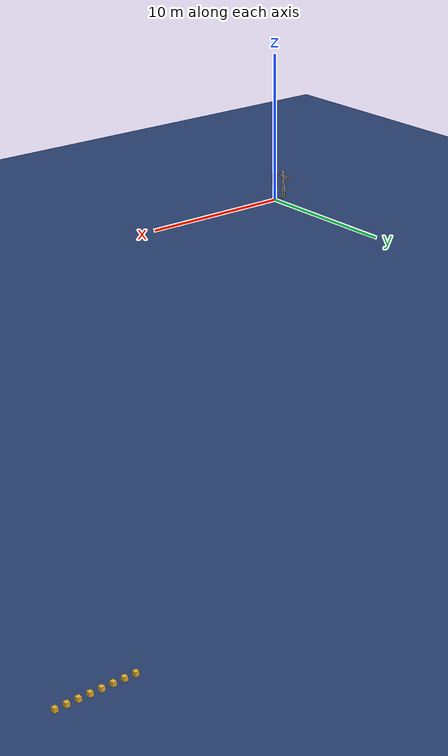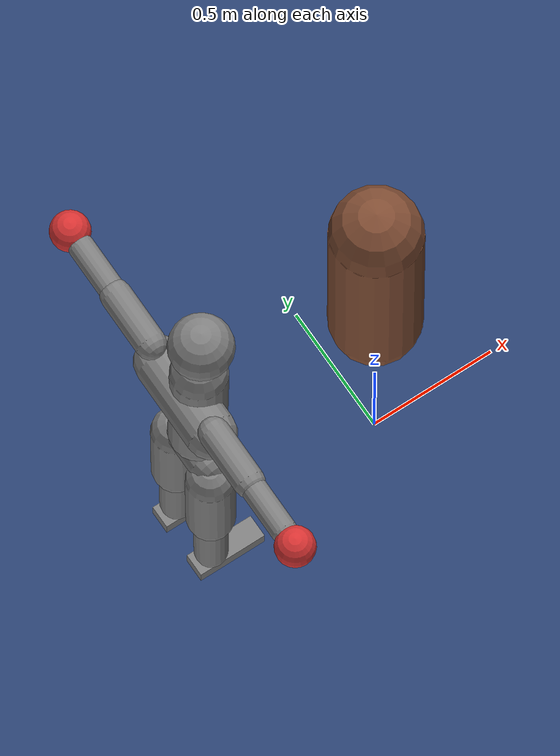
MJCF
<mujoco model="trump_bag">
  <compiler angle="degree" inertiafromgeom="true" autolimits="true"/>
  <option timestep="0.005" iterations="10" ls_iterations="10" integrator="implicitfast">
    <flag eulerdamp="disable"/>
  </option>
  <default>
    <geom contype="1" conaffinity="1" condim="3" friction="1.0 0.005 0.0001" density="1000" margin="0"/>
    <joint limited="true"/>
    <position ctrllimited="true"/>
  </default>
  <asset>
    <texture name="grid" type="2d" builtin="checker" rgb1=".18 .28 .48" rgb2=".14 .22 .40" width="300" height="300"/>
    <material name="grid" texture="grid" texrepeat="6 6" reflectance="0"/>
  </asset>
  <worldbody>
    <light pos="0 0 5" dir="0 0 -1" directional="true"/>
    <geom name="floor" type="plane" size="0 0 0.05" material="grid" friction="1.0 0.005 0.0001"/>

    <body name="a_pelvis" pos="-0.7500 0.0000 0.8500" quat="1.00000 0 0 0.00000">
      <freejoint name="a_root"/>
      <geom name="a_pelvis_geom" type="capsule" fromto="0.0000 -0.0700 0.0000 0.0000 0.0700 0.0000" size="0.0759" mass="9.1798" />
      <geom name="a_pelvis_up" type="capsule" fromto="0.0000 0.0000 0.0000 0.0000 0.0000 0.1100" size="0.0683" mass="6.1988" />
      <body name="a_torso" pos="0.0000 0.0000 0.1300">
        <joint name="a_abdomen_z" type="hinge" axis="0 0 1" range="-45 45" damping="0.5" armature="0.08" stiffness="0"/>
        <joint name="a_abdomen_y" type="hinge" axis="0 1 0" range="-60 30" damping="0.5" armature="0.08" stiffness="0"/>
        <joint name="a_abdomen_x" type="hinge" axis="1 0 0" range="-35 35" damping="0.5" armature="0.08" stiffness="0"/>
        <geom name="a_torso_geom" type="capsule" fromto="0.0000 0.0000 0.0200 0.0100 0.0000 0.5700" size="0.1054" mass="38.4465" />
        <geom name="a_chest_geom" type="capsule" fromto="-0.0480 -0.1600 0.4160 -0.0480 0.1600 0.4160" size="0.0949" mass="0.5"/>
        <geom name="a_head_geom" type="sphere" pos="0.0200 0.0000 0.8000" size="0.1200" mass="8.7723" />
        <body name="a_upper_arm_l" pos="-0.0600 0.2000 0.5200">
          <joint name="a_shoulder_x_l" type="hinge" axis="1 0 0" range="-170 30" damping="0.5" armature="0.03" stiffness="0"/>
          <joint name="a_shoulder_z_l" type="hinge" axis="0 0 1" range="-110 110" damping="0.5" armature="0.03" stiffness="0"/>
          <geom name="a_upper_arm_l_geom" type="capsule" fromto="0.0000 0.0000 0.0000 0.0000 0.2200 0.0000" size="0.0580" mass="3.0324" />
          <body name="a_forearm_l" pos="0.0000 0.2200 0.0000">
            <joint name="a_elbow_l" type="hinge" axis="0 0 1" range="-150 0" damping="0.5" armature="0.02" stiffness="0"/>
            <geom name="a_forearm_l_geom" type="capsule" fromto="0.0000 0.0000 0.0000 0.0000 0.2202 0.0000" size="0.0480" mass="1.7328" />
            <geom name="a_glove_l" type="sphere" pos="0.0000 0.2877 0.0000" size="0.0750" mass="0.9328" rgba="0.85 0.2 0.2 1"/>
          </body>
        </body>
        <body name="a_upper_arm_r" pos="-0.0600 -0.2000 0.5200">
          <joint name="a_shoulder_x_r" type="hinge" axis="1 0 0" range="-30 170" damping="0.5" armature="0.03" stiffness="0"/>
          <joint name="a_shoulder_z_r" type="hinge" axis="0 0 1" range="-110 110" damping="0.5" armature="0.03" stiffness="0"/>
          <geom name="a_upper_arm_r_geom" type="capsule" fromto="0.0000 0.0000 0.0000 0.0000 -0.2200 0.0000" size="0.0580" mass="3.0324" />
          <body name="a_forearm_r" pos="0.0000 -0.2200 0.0000">
            <joint name="a_elbow_r" type="hinge" axis="0 0 1" range="0 150" damping="0.5" armature="0.02" stiffness="0"/>
            <geom name="a_forearm_r_geom" type="capsule" fromto="0.0000 0.0000 0.0000 0.0000 -0.2202 0.0000" size="0.0480" mass="1.7328" />
            <geom name="a_glove_r" type="sphere" pos="0.0000 -0.2877 0.0000" size="0.0750" mass="0.9328" rgba="0.85 0.2 0.2 1"/>
          </body>
        </body>
      </body>
      <body name="a_thigh_l" pos="-0.0200 0.1100 -0.0500">
        <joint name="a_hip_x_l" type="hinge" axis="1 0 0" range="-40 40" damping="0.5" armature="0.1" stiffness="0"/>
        <joint name="a_hip_z_l" type="hinge" axis="0 0 1" range="-35 35" damping="0.5" armature="0.1" stiffness="0"/>
        <joint name="a_hip_y_l" type="hinge" axis="0 1 0" range="-120 30" damping="0.5" armature="0.1" stiffness="0"/>
        <geom name="a_thigh_l_geom" type="capsule" fromto="0.0000 0.0000 0.0000 0.0000 0.0000 -0.3618" size="0.0900" mass="10.8300" />
        <body name="a_shin_l" pos="0.0000 0.0000 -0.3618">
          <joint name="a_knee_l" type="hinge" axis="0 1 0" range="0 150" damping="0.5" armature="0.1" stiffness="0"/>
          <geom name="a_shin_l_geom" type="capsule" fromto="0.0000 0.0000 0.0000 0.0000 0.0000 -0.3404" size="0.0620" mass="5.0359" />
          <body name="a_foot_l" pos="0.0000 0.0000 -0.3404">
            <joint name="a_ankle_y_l" type="hinge" axis="0 1 0" range="-20 50" damping="0.5" armature="0.03" stiffness="0"/>
            <joint name="a_ankle_x_l" type="hinge" axis="1 0 0" range="-25 25" damping="0.5" armature="0.03" stiffness="0"/>
            <geom name="a_foot_l_geom" type="box" pos="0.0624 0.0000 -0.0720" size="0.1358 0.0450 0.0280" mass="1.5704" friction="1.0 0.005 0.0001"/>
            <site name="a_foot_l_site" pos="0.0624 0.0000 -0.0720" size="0.01"/>
          </body>
        </body>
      </body>
      <body name="a_thigh_r" pos="-0.0200 -0.1100 -0.0500">
        <joint name="a_hip_x_r" type="hinge" axis="1 0 0" range="-40 40" damping="0.5" armature="0.1" stiffness="0"/>
        <joint name="a_hip_z_r" type="hinge" axis="0 0 1" range="-35 35" damping="0.5" armature="0.1" stiffness="0"/>
        <joint name="a_hip_y_r" type="hinge" axis="0 1 0" range="-120 30" damping="0.5" armature="0.1" stiffness="0"/>
        <geom name="a_thigh_r_geom" type="capsule" fromto="0.0000 0.0000 0.0000 0.0000 0.0000 -0.3618" size="0.0900" mass="10.8300" />
        <body name="a_shin_r" pos="0.0000 0.0000 -0.3618">
          <joint name="a_knee_r" type="hinge" axis="0 1 0" range="0 150" damping="0.5" armature="0.1" stiffness="0"/>
          <geom name="a_shin_r_geom" type="capsule" fromto="0.0000 0.0000 0.0000 0.0000 0.0000 -0.3404" size="0.0620" mass="5.0359" />
          <body name="a_foot_r" pos="0.0000 0.0000 -0.3404">
            <joint name="a_ankle_y_r" type="hinge" axis="0 1 0" range="-20 50" damping="0.5" armature="0.03" stiffness="0"/>
            <joint name="a_ankle_x_r" type="hinge" axis="1 0 0" range="-25 25" damping="0.5" armature="0.03" stiffness="0"/>
            <geom name="a_foot_r_geom" type="box" pos="0.0624 0.0000 -0.0720" size="0.1358 0.0450 0.0280" mass="1.5704" friction="1.0 0.005 0.0001"/>
            <site name="a_foot_r_site" pos="0.0624 0.0000 -0.0720" size="0.01"/>
          </body>
        </body>
      </body>
    </body>
    <body name="bag" pos="0 0 2.45">
      <joint name="bag_swing" type="ball" damping="6"/>
      <geom name="bag_geom" type="capsule" fromto="0 0 -0.62 0 0 -1.42" size="0.17" mass="35" rgba="0.5 0.3 0.2 1"/>
      <site name="bag_head" pos="0 0 -0.82" size="0.02"/>
      <site name="bag_body" pos="0 0 -1.22" size="0.02"/>
    </body>
    <body name="cube_0" pos="40.0000 40.0000 0.3000"><freejoint name="cube_0"/><geom name="cube_0_geom" type="box" size="0.1 0.1 0.1" mass="1.0" rgba="0.9 0.7 0.2 1"/></body>
    <body name="cube_1" pos="40.5000 40.0000 0.3000"><freejoint name="cube_1"/><geom name="cube_1_geom" type="box" size="0.1 0.1 0.1" mass="1.0" rgba="0.9 0.7 0.2 1"/></body>
    <body name="cube_2" pos="41.0000 40.0000 0.3000"><freejoint name="cube_2"/><geom name="cube_2_geom" type="box" size="0.1 0.1 0.1" mass="1.0" rgba="0.9 0.7 0.2 1"/></body>
    <body name="cube_3" pos="41.5000 40.0000 0.3000"><freejoint name="cube_3"/><geom name="cube_3_geom" type="box" size="0.1 0.1 0.1" mass="1.0" rgba="0.9 0.7 0.2 1"/></body>
    <body name="cube_4" pos="42.0000 40.0000 0.3000"><freejoint name="cube_4"/><geom name="cube_4_geom" type="box" size="0.1 0.1 0.1" mass="1.0" rgba="0.9 0.7 0.2 1"/></body>
    <body name="cube_5" pos="42.5000 40.0000 0.3000"><freejoint name="cube_5"/><geom name="cube_5_geom" type="box" size="0.1 0.1 0.1" mass="1.0" rgba="0.9 0.7 0.2 1"/></body>
    <body name="cube_6" pos="43.0000 40.0000 0.3000"><freejoint name="cube_6"/><geom name="cube_6_geom" type="box" size="0.1 0.1 0.1" mass="1.0" rgba="0.9 0.7 0.2 1"/></body>
    <body name="cube_7" pos="43.5000 40.0000 0.3000"><freejoint name="cube_7"/><geom name="cube_7_geom" type="box" size="0.1 0.1 0.1" mass="1.0" rgba="0.9 0.7 0.2 1"/></body>
  </worldbody>
  <contact>
    <exclude body1="a_pelvis" body2="a_torso"/>
    <exclude body1="a_pelvis" body2="a_thigh_l"/>
    <exclude body1="a_thigh_l" body2="a_shin_l"/>
    <exclude body1="a_shin_l" body2="a_foot_l"/>
    <exclude body1="a_torso" body2="a_upper_arm_l"/>
    <exclude body1="a_upper_arm_l" body2="a_forearm_l"/>
    <exclude body1="a_pelvis" body2="a_thigh_r"/>
    <exclude body1="a_thigh_r" body2="a_shin_r"/>
    <exclude body1="a_shin_r" body2="a_foot_r"/>
    <exclude body1="a_torso" body2="a_upper_arm_r"/>
    <exclude body1="a_upper_arm_r" body2="a_forearm_r"/>
  </contact>
  <actuator>
    <position name="a_abdomen_z" joint="a_abdomen_z" kp="495.9" kv="23.142" forcerange="-187.34 187.34" ctrlrange="-0.7854 0.7854"/>
    <position name="a_abdomen_y" joint="a_abdomen_y" kp="495.9" kv="23.142" forcerange="-187.34 187.34" ctrlrange="-1.0472 0.5236"/>
    <position name="a_abdomen_x" joint="a_abdomen_x" kp="495.9" kv="23.142" forcerange="-187.34 187.34" ctrlrange="-0.6109 0.6109"/>
    <position name="a_shoulder_x_l" joint="a_shoulder_x_l" kp="176.32" kv="8.816" forcerange="-110.2 110.2" ctrlrange="-2.9671 0.5236"/>
    <position name="a_shoulder_z_l" joint="a_shoulder_z_l" kp="176.32" kv="8.816" forcerange="-110.2 110.2" ctrlrange="-1.9199 1.9199"/>
    <position name="a_elbow_l" joint="a_elbow_l" kp="121.22" kv="6.061" forcerange="-77.14 77.14" ctrlrange="-2.6180 0.0000"/>
    <position name="a_shoulder_x_r" joint="a_shoulder_x_r" kp="176.32" kv="8.816" forcerange="-110.2 110.2" ctrlrange="-0.5236 2.9671"/>
    <position name="a_shoulder_z_r" joint="a_shoulder_z_r" kp="176.32" kv="8.816" forcerange="-110.2 110.2" ctrlrange="-1.9199 1.9199"/>
    <position name="a_elbow_r" joint="a_elbow_r" kp="121.22" kv="6.061" forcerange="-77.14 77.14" ctrlrange="0.0000 2.6180"/>
    <position name="a_hip_x_l" joint="a_hip_x_l" kp="661.2" kv="33.06" forcerange="-264.48 264.48" ctrlrange="-0.6981 0.6981"/>
    <position name="a_hip_z_l" joint="a_hip_z_l" kp="661.2" kv="33.06" forcerange="-264.48 264.48" ctrlrange="-0.6109 0.6109"/>
    <position name="a_hip_y_l" joint="a_hip_y_l" kp="661.2" kv="33.06" forcerange="-264.48 264.48" ctrlrange="-2.0944 0.5236"/>
    <position name="a_knee_l" joint="a_knee_l" kp="661.2" kv="33.06" forcerange="-286.52 286.52" ctrlrange="0.0000 2.6180"/>
    <position name="a_ankle_y_l" joint="a_ankle_y_l" kp="826.5" kv="33.06" forcerange="-242.44 242.44" ctrlrange="-0.3491 0.8727"/>
    <position name="a_ankle_x_l" joint="a_ankle_x_l" kp="88.16" kv="4.408" forcerange="-66.12 66.12" ctrlrange="-0.4363 0.4363"/>
    <position name="a_hip_x_r" joint="a_hip_x_r" kp="661.2" kv="33.06" forcerange="-264.48 264.48" ctrlrange="-0.6981 0.6981"/>
    <position name="a_hip_z_r" joint="a_hip_z_r" kp="661.2" kv="33.06" forcerange="-264.48 264.48" ctrlrange="-0.6109 0.6109"/>
    <position name="a_hip_y_r" joint="a_hip_y_r" kp="661.2" kv="33.06" forcerange="-264.48 264.48" ctrlrange="-2.0944 0.5236"/>
    <position name="a_knee_r" joint="a_knee_r" kp="661.2" kv="33.06" forcerange="-286.52 286.52" ctrlrange="0.0000 2.6180"/>
    <position name="a_ankle_y_r" joint="a_ankle_y_r" kp="826.5" kv="33.06" forcerange="-242.44 242.44" ctrlrange="-0.3491 0.8727"/>
    <position name="a_ankle_x_r" joint="a_ankle_x_r" kp="88.16" kv="4.408" forcerange="-66.12 66.12" ctrlrange="-0.4363 0.4363"/>
  </actuator>
  <keyframe>
    <key name="stand" qpos="-0.7500 0.0000 0.8360 1.00000 0 0 0.00000 0.0000 0.0000 0.0000 -1.3265 -0.7330 -1.9548 1.3265 0.7330 1.9548 0.0000 0.0000 -0.1931 0.4538 -0.2606 0.0000 0.0000 0.0000 -0.1931 0.4538 -0.2606 0.0000 1 0 0 0 40.0000 40.0000 0.3000 1 0 0 0 40.5000 40.0000 0.3000 1 0 0 0 41.0000 40.0000 0.3000 1 0 0 0 41.5000 40.0000 0.3000 1 0 0 0 42.0000 40.0000 0.3000 1 0 0 0 42.5000 40.0000 0.3000 1 0 0 0 43.0000 40.0000 0.3000 1 0 0 0 43.5000 40.0000 0.3000 1 0 0 0"/>
  </keyframe>
</mujoco>
